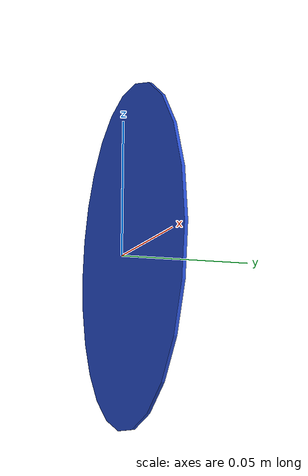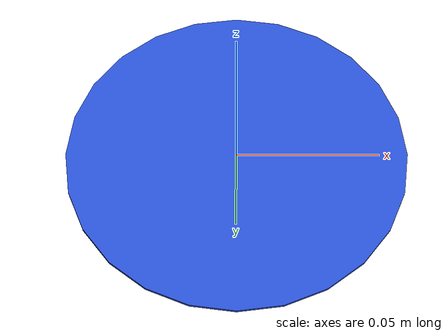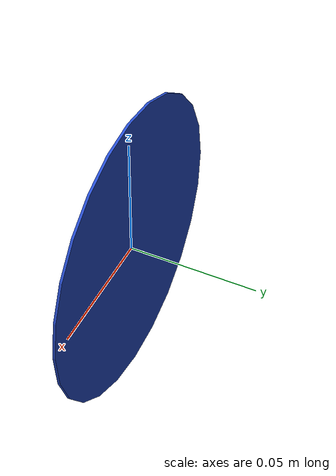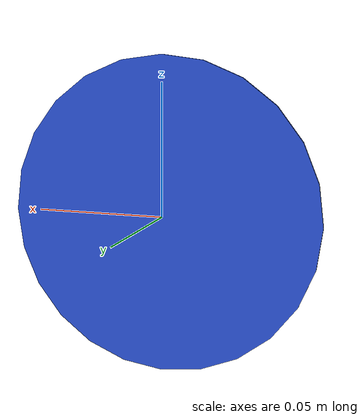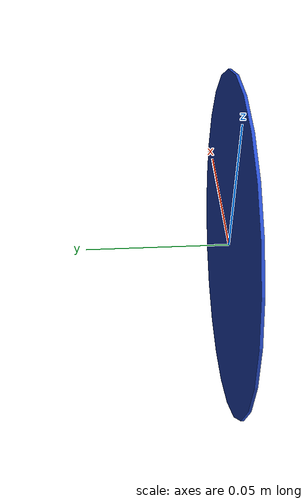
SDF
<?xml version="1.0"?>
<sdf version="1.5">
  <model name="plate">
    <static>true</static>
    <link name="link">
      <collision name="collision">
        <pose>0 0 0 1.571 0 0</pose>
        <geometry>
            <cylinder>
              <radius>0.06</radius>
              <length>0.001</length>
            </cylinder>
        </geometry>
      </collision>
      <visual name="visual">
        <pose>0 0 0 1.571 0 0</pose>
        <geometry>
            <cylinder>
              <radius>0.06</radius>
              <length>0.001</length>
            </cylinder>
        </geometry>
        <material><script><name>Gazebo/Blue</name></script></material>
      </visual>
    </link>
  </model>
</sdf>
